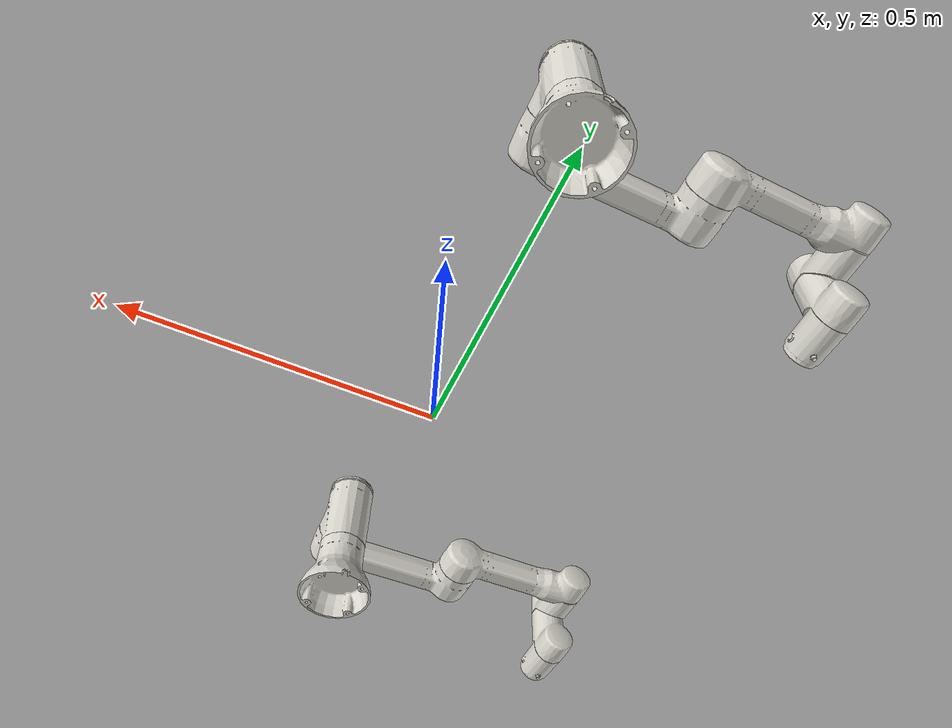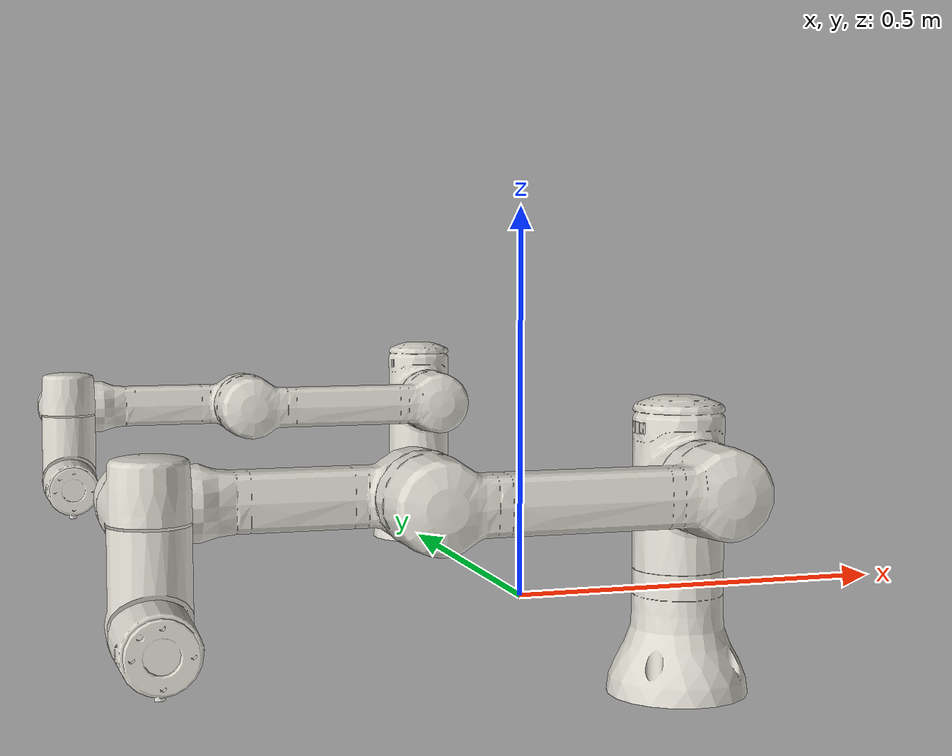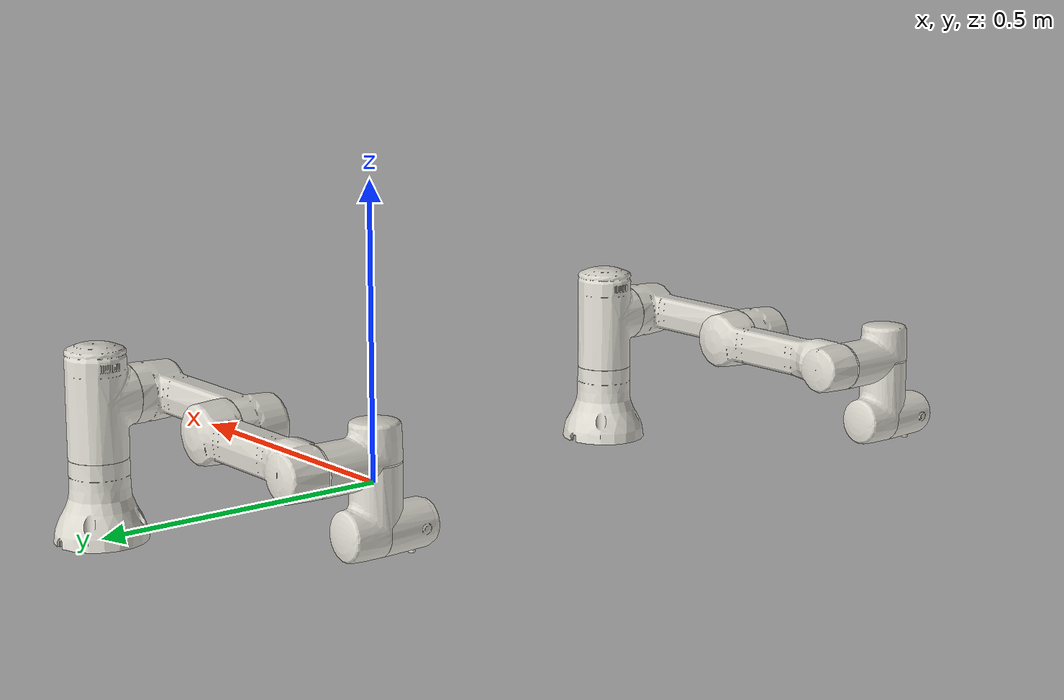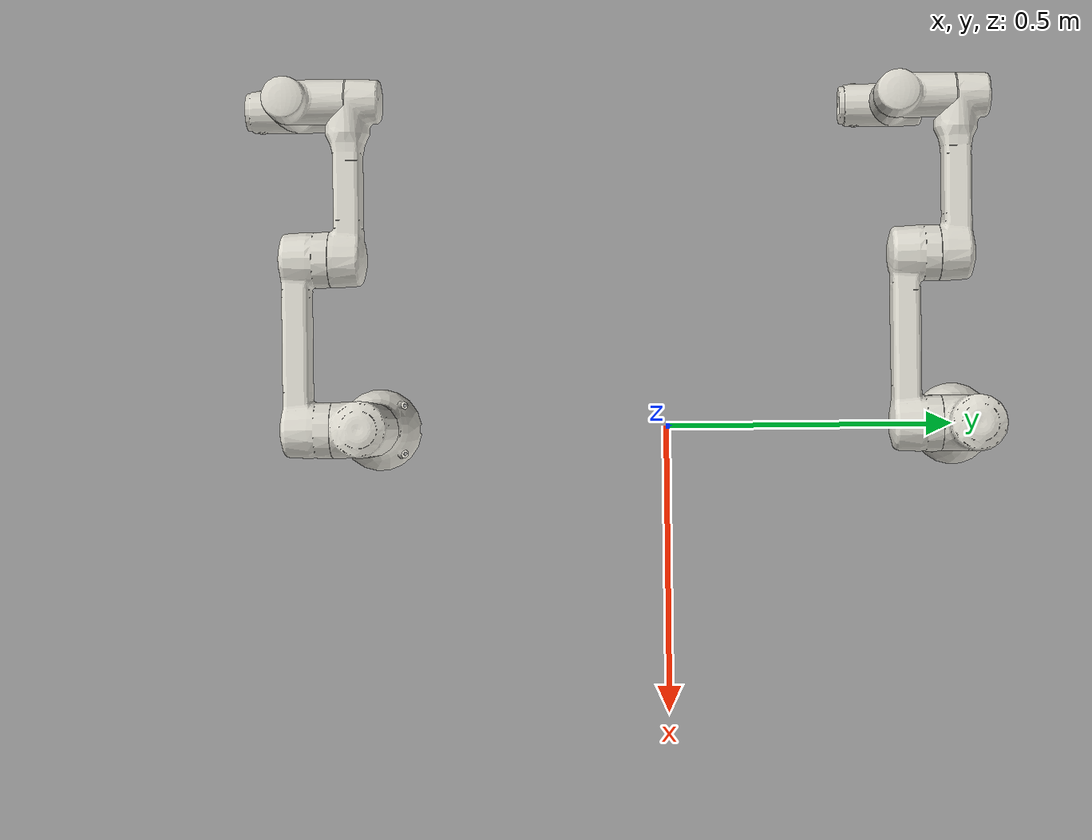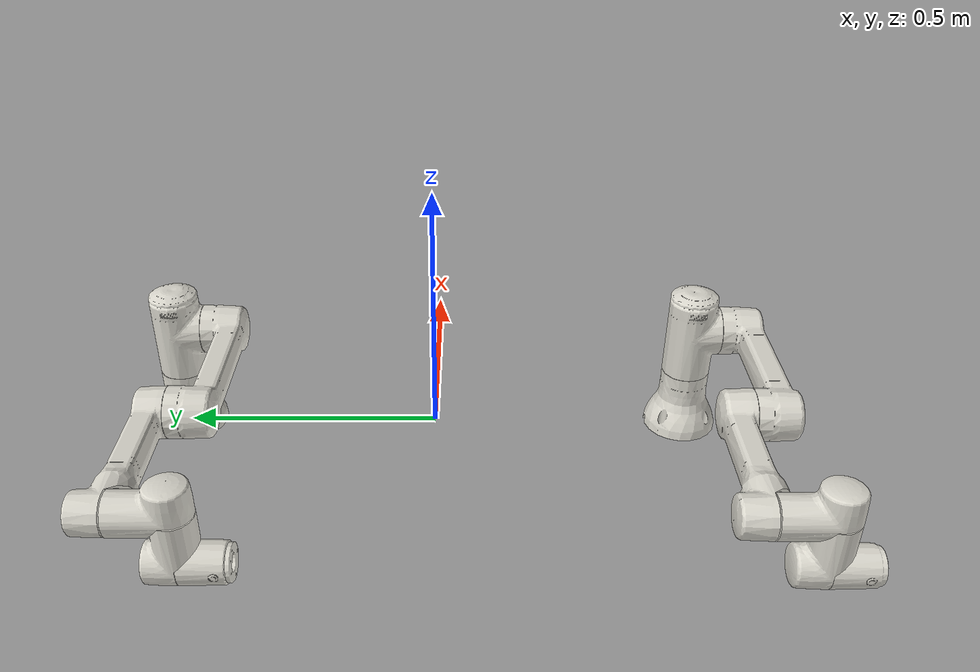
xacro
<?xml version="1.0"?>
<robot xmlns:xacro="http://www.ros.org/wiki/xacro" name="lebai_lm3">
  <xacro:include filename="$(find lebai_lm3_support)/urdf/lm3_macro.xacro"/>

  <xacro:lebai_lm3 prefix="robot1_"/>

  <xacro:lebai_lm3 prefix="robot2_"/>

    <link name="world">
    </link>

    <joint name="world_to_robot1" type="fixed">
        <parent link="world"/>
        <child link="robot1_base_link"/>
        <origin xyz="0.0 0.5 0.0" />
    </joint>

      <joint name="world_to_robot2" type="fixed">
        <parent link="world"/>
        <child link="robot2_base_link"/>
        <origin xyz="0.0 -0.5 0.0" />
    </joint>

</robot>

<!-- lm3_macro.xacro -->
<robot xmlns:xacro="http://ros.org/wiki/xacro">
<!-- Include all common properties -->
  <xacro:include filename="$(find lebai_resources)/urdf/common_colours.xacro"/>
  <xacro:include filename="$(find lebai_resources)/urdf/common_constants.xacro"/>
  <xacro:include filename="$(find lebai_resources)/urdf/common_materials.xacro"/>
<!-- Robot DH parameters define joint-->
<xacro:property name="d1" value="0.21583" />
<xacro:property name="d4" value="0.12063" />
<xacro:property name="d5" value="0.09833" />
<xacro:property name="d6" value="0.08343" />
<xacro:property name="a2" value="-0.28" />
<xacro:property name="a3" value="-0.26"/>
<!-- Robot visual and  collision dir-->
<xacro:property name="visual_base" value="package://lebai_lm3_support/meshes/lm3/visual/base_link.stl" />
<xacro:property name="visual_link1" value="package://lebai_lm3_support/meshes/lm3/visual/link1.stl" />
<xacro:property name="visual_link2" value="package://lebai_lm3_support/meshes/lm3/visual/link2.stl" />
<xacro:property name="visual_link3" value="package://lebai_lm3_support/meshes/lm3/visual/link3.stl" />
<xacro:property name="visual_link4" value="package://lebai_lm3_support/meshes/lm3/visual/link4.stl" />
<xacro:property name="visual_link5" value="package://lebai_lm3_support/meshes/lm3/visual/link5.stl" />
<xacro:property name="visual_link6" value="package://lebai_lm3_support/meshes/lm3/visual/link6.stl" />

<xacro:property name="collision_base" value="package://lebai_lm3_support/meshes/lm3/collision/base_link.stl" />
<xacro:property name="collision_link1" value="package://lebai_lm3_support/meshes/lm3/collision/link1.stl" />
<xacro:property name="collision_link2" value="package://lebai_lm3_support/meshes/lm3/collision/link2.stl" />
<xacro:property name="collision_link3" value="package://lebai_lm3_support/meshes/lm3/collision/link3.stl" />
<xacro:property name="collision_link4" value="package://lebai_lm3_support/meshes/lm3/collision/link4.stl" />
<xacro:property name="collision_link5" value="package://lebai_lm3_support/meshes/lm3/collision/link5.stl" />
<xacro:property name="collision_link6" value="package://lebai_lm3_support/meshes/lm3/collision/link6.stl" />
<!-- Robot link mass-->
<xacro:property name="mass_link1" value="2.147" />
<xacro:property name="mass_link2" value="1.972" />
<xacro:property name="mass_link3" value="1.668" />
<xacro:property name="mass_link4" value="0.969" />
<xacro:property name="mass_link5" value="0.969" />
<xacro:property name="mass_link6" value="0.584"/>

<!-- Limit of joints-->
<xacro:property name="joint1_upper_limit" value="6.28" />
<xacro:property name="joint2_upper_limit" value="6.28" />
<xacro:property name="joint3_upper_limit" value="6.28" />
<xacro:property name="joint4_upper_limit" value="6.28" />
<xacro:property name="joint5_upper_limit" value="6.28" />
<xacro:property name="joint6_upper_limit" value="6.28" />

<xacro:property name="joint1_lower_limit" value="-6.28" />
<xacro:property name="joint2_lower_limit" value="-6.28" />
<xacro:property name="joint3_lower_limit" value="-6.28" />
<xacro:property name="joint4_lower_limit" value="-6.28" />
<xacro:property name="joint5_lower_limit" value="-6.28" />
<xacro:property name="joint6_lower_limit" value="-6.28" />

<xacro:property name="joint1_vel_limit" value="3.14" />
<xacro:property name="joint2_vel_limit" value="3.14" />
<xacro:property name="joint3_vel_limit" value="3.14" />
<xacro:property name="joint4_vel_limit" value="3.14" />
<xacro:property name="joint5_vel_limit" value="3.14" />
<xacro:property name="joint6_vel_limit" value="3.14" />

<xacro:macro name="lebai_lm3" params="prefix">

<!-- link list -->
<link name="${prefix}base_link">
	<visual>
		<geometry>
			<mesh filename="${visual_base}"/>
		</geometry>
    	<xacro:material_white name="white"/>
	</visual>
	<collision>
		<geometry>
			<mesh filename="${collision_base}" />
		</geometry>
	</collision>
</link>
<link name="${prefix}link_1">
	<visual>
		<geometry>
			<mesh filename="${visual_link1}" />
		</geometry>
    	<xacro:material_white name="white"/>
	</visual>
	<collision>
		<geometry>
			<mesh filename="${collision_link1}" />
		</geometry>
	</collision>

    <inertial>
      <origin xyz="0.0 -0.011 -0.015" rpy="0.0 0.0 0.0"/>
      <mass value="${mass_link1}"/>
      <inertia
	  ixx="0.0082391363" ixy="0" ixz="0"
	  iyy="0.0076087775" iyz="0.00032383729"
	  izz="0.0032573589"/>
    </inertial>
</link>
<link name="${prefix}link_2">
	<visual>
		<geometry>
			<mesh filename="${visual_link2}" />
		</geometry>
    	<xacro:material_white name="white"/>
	</visual>
	<collision>
		<geometry>
			<mesh filename="${collision_link2}" />
		</geometry>
	</collision>

    <inertial>
      <origin xyz="-0.134 0.0 0.094" rpy="0.0 0.0 0.0"/>
      <mass value="${mass_link2}"/>
      <inertia
	  ixx="0.0017128976" ixy="0.0" ixz="0.000073751933"
	  iyy="0.033612233" iyz="0.0"
	  izz="0.03384798"/>
    </inertial>
</link>
<link name="${prefix}link_3">
	<visual>
		<geometry>
			<mesh filename="${visual_link3}" />
		</geometry>
    	<xacro:material_white name="white"/>
	</visual>
	<collision>
		<geometry>
			<mesh filename="${collision_link3}" />
		</geometry>
	</collision>

    <inertial>
      <origin xyz="-0.102 0.0 0.019" rpy="0.0 0.0 0.0"/>
      <mass value="${mass_link3}"/>
      <inertia
	  ixx="0.0017092842" ixy="0.0" ixz="-0.002750573"
	  iyy="0.022563964" iyz="0.0"
	  izz="0.022383877"/>
    </inertial>
</link>

<link name="${prefix}link_4">
	<visual>
		<geometry>
			<mesh filename="${visual_link4}" />
		</geometry>
    	<xacro:material_white name="white"/>
	</visual>
	<collision>
		<geometry>
			<mesh filename="${collision_link4}" />
		</geometry>
	</collision>

    <inertial>
      <origin xyz="0.0 0.011 -0.039" rpy="0.0 0.0 0.0"/>
      <mass value="${mass_link4}"/>
      <inertia
	  ixx="0.0018744072" ixy="0.0" ixz="0.0"
	  iyy="0.0017809517" iyz="-0.00040039676"
	  izz="0.00079617326"/>
    </inertial>
</link>
<link name="${prefix}link_5">
	<visual>
		<geometry>
			<mesh filename="${visual_link5}" />
		</geometry>
    	<xacro:material_white name="white"/>
	</visual>
	<collision>
		<geometry>
			<mesh filename="${collision_link5}" />
		</geometry>
	</collision>
    <inertial>
      <origin xyz="0.0 -0.011 -0.039" rpy="0.0 0.0 0.0"/>
      <mass value="${mass_link5}"/>
      <inertia
	  ixx="0.0018744072" ixy="0.0" ixz="0.0"
	  iyy="0.0017809517" iyz="0.00040039676"
	  izz="0.00079617326"/>
    </inertial>
</link>
<link name="${prefix}link_6">
	<visual>
		<geometry>
			<mesh filename="${visual_link6}" />
		</geometry>
    	<xacro:material_white name="white"/>
	</visual>
	<collision>
		<geometry>
			<mesh filename="${collision_link6}" />
		</geometry>
	</collision>
    <inertial>
      <origin xyz="0 0 -0.049" rpy="0 0 0"/>
      <mass value="${mass_link6}"/>
      <inertia
	  ixx="0.00050434988" ixy="0.0" ixz="0.0"
	  iyy="0.0005155908" iyz="0.0"
	  izz="0.0004119313"/>
    </inertial>
</link>

<link name="${prefix}base" />
<link name="${prefix}tool0"/>
<!-- end of link list -->

<!-- joint list -->
<joint name="${prefix}joint_1" type="revolute">
	<parent link="${prefix}base_link"/>
	<child link="${prefix}link_1"/>
	<origin xyz="0.0 0.0 ${d1}" rpy="0.0 0.0 0.0"/>
	<axis xyz="0 0 1" />
	<limit lower="${joint1_lower_limit}" upper="${joint1_upper_limit}" effort="100" velocity="${joint1_vel_limit}" />
</joint>
<joint name="${prefix}joint_2" type="revolute">
	<parent link="${prefix}link_1"/>
	<child link="${prefix}link_2"/>
        <origin xyz="0.0 0.0 0.0" rpy="${PI_2} 0 0"/>
	<axis xyz="0 0 1" />
	<limit lower="${joint2_lower_limit}" upper="${joint2_upper_limit}" effort="100" velocity="${joint2_vel_limit}" />
</joint>
<joint name="${prefix}joint_3" type="revolute">
	<parent link="${prefix}link_2"/>
	<child link="${prefix}link_3"/>
        <origin xyz="${a2} 0 0" rpy="0 0 0"/>
	<axis xyz="0 0 1" />
	<limit lower="${joint3_lower_limit}" upper="${joint3_upper_limit}" effort="100" velocity="${joint3_vel_limit}" />
</joint>
<joint name="${prefix}joint_4" type="revolute">
	<parent link="${prefix}link_3"/>
	<child link="${prefix}link_4"/>
       <origin xyz="${a3} 0.0 ${d4}" rpy="0 0 0"/>
	<axis xyz="0 0 1" />
	<limit lower="${joint4_lower_limit}" upper="${joint4_upper_limit}" effort="100" velocity="${joint4_vel_limit}" />
</joint>
<joint name="${prefix}joint_5" type="revolute">
	<parent link="${prefix}link_4"/>
	<child link="${prefix}link_5"/>
        <origin xyz="0 -${d5} 0" rpy="${PI_2} 0 0"/>
	<axis xyz="0 0 1" />
	<limit lower="${joint5_lower_limit}" upper="${joint5_upper_limit}" effort="5.5" velocity="${joint5_vel_limit}" />
</joint>
<joint name="${prefix}joint_6" type="revolute">
	<parent link="${prefix}link_5"/>
	<child link="${prefix}link_6"/>
        <origin xyz="0  ${d6} 0" rpy="-${PI_2} 0 0"/>
	<axis xyz="0 0 1" />
	<limit lower="${joint6_lower_limit}" upper="${joint6_upper_limit}" effort="4.6" velocity="${joint6_vel_limit}" />
</joint>
<joint name="${prefix}joint_6-tool0" type="fixed">
      <parent link="${prefix}link_6"/>
      <child link="${prefix}tool0"/>
      <origin xyz="0 0 0" rpy="0 0 0" />
</joint>

<joint name="${prefix}base_link-base" type="fixed">
      <parent link="${prefix}base_link"/>
      <child link="${prefix}base"/>
      <origin xyz="0.0 0.0 0.0" rpy="0.0 0.0 0.0"/>
</joint>
<!-- end of joint list -->

</xacro:macro>
</robot>

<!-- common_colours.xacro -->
<robot xmlns:xacro="http://ros.org/wiki/xacro">

  <!-- common colours define for lebai robot -->
  <xacro:property name="color_yellow"   value="0.96 0.76 0.13 1.0" />
  <xacro:property name="color_white"    value="0.86 0.85 0.81 1.0" />
  <xacro:property name="color_grey"     value="0.34 0.35 0.36 1.0" />

  <xacro:property name="color_blue"    value="0.0 0.0 1.0 1.0" />
  <xacro:property name="color_black"    value="0.15 0.15 0.15 1.0" />
  <xacro:property name="color_greyish"  value="0.75 0.75 0.75 1.0" />
  <xacro:property name="color_green"    value="${  0/255} ${155/255} ${ 70/255} 1.0" />

</robot>

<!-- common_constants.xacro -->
<robot xmlns:xacro="http://ros.org/wiki/xacro">

  <!-- Global constants for lebai robot -->
<xacro:property name="PI" value="3.1415926535897931"/>
<xacro:property name="PI_2" value="1.570796327"/>
</robot>

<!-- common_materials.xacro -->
<robot xmlns:xacro="http://ros.org/wiki/xacro">
  <xacro:include filename="$(find lebai_resources)/urdf/common_colours.xacro"/>

  <xacro:macro name="material_yellow" params="name">
    <material name="${name}">
      <color rgba="${color_yellow}"/>
    </material>
  </xacro:macro>

  <xacro:macro name="material_white" params="name">
    <material name="${name}">
      <color rgba="${color_white}"/>
    </material>
  </xacro:macro>

  <xacro:macro name="material_grey" params="name">
    <material name="${name}">
      <color rgba="${color_grey}"/>
    </material>
  </xacro:macro>

  <xacro:macro name="material_blue" params="name">
    <material name="${name}">
      <color rgba="${color_blue}"/>
    </material>
  </xacro:macro>

  <xacro:macro name="material_black" params="name">
    <material name="${name}">
      <color rgba="${color_black}"/>
    </material>
  </xacro:macro>

  <xacro:macro name="material_greyish" params="name">
    <material name="${name}">
      <color rgba="${color_greyish}"/>
    </material>
  </xacro:macro>

  <xacro:macro name="material_green" params="name">
    <material name="${name}">
      <color rgba="${color_green}"/>
    </material>
  </xacro:macro>

</robot>
